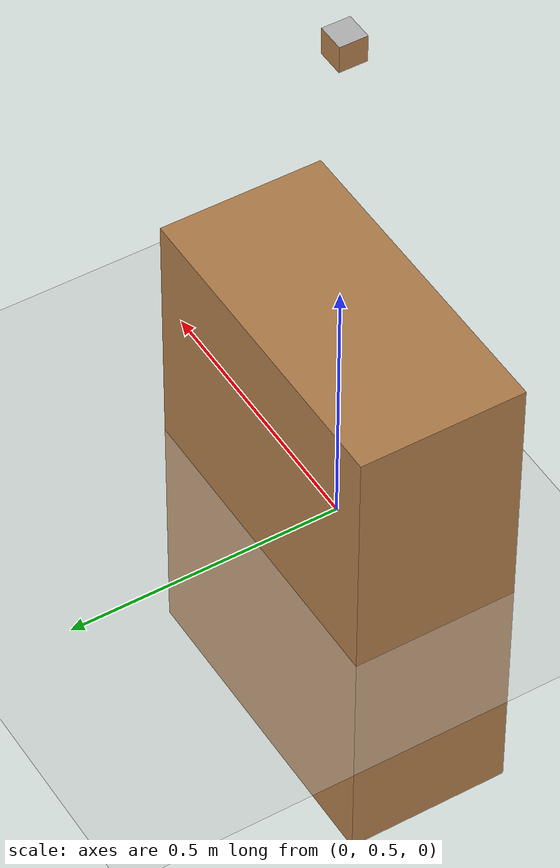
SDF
<?xml version="1.0" ?>

<sdf version="1.6">
  <world name="ur_visual">

    <!-- A global light source -->
    <include>
      <uri>model://sun</uri>
    </include>

    <!-- A ground plane -->
    <include>
      <uri>model://ground_plane</uri>
    </include>

    <!-- A desk -->
    <include>
      <uri>model://desk</uri>
      <pose>0 0.5 0 0 0 0</pose>
    </include>

    <!-- Aruco marker on a box -->
    <include>
      <uri>model://marker</uri>
      <pose>0 0.5 1 0 0 0</pose>
    </include>
  </world>
</sdf>

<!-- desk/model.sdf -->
<sdf version='1.6'>
  <model name='desk'>
    <link name="link">
      <inertial>
        <mass>1.0</mass>
        <inertia>
          <ixx>0.08</ixx>       <!-- for a box: ixx = 0.083 * mass * (y*y + z*z) -->
          <ixy>0.0</ixy>         <!-- for a box: ixy = 0 -->
          <ixz>0.0</ixz>         <!-- for a box: ixz = 0 -->
          <iyy>0.103</iyy>       <!-- for a box: iyy = 0.083 * mass * (x*x + z*z) -->
          <iyz>0.0</iyz>         <!-- for a box: iyz = 0 -->
          <izz>0.037</izz>       <!-- for a box: izz = 0.083 * mass * (x*x + y*y) -->
        </inertia>
      </inertial>
      <collision name="collision">
        <geometry>
          <box>
            <size>0.6 0.3 0.938</size>
          </box>
        </geometry>
      </collision>
      <visual name="visual">
        <geometry>
          <box>
            <size>0.6 0.3 0.938</size>
          </box>
        </geometry>
	  <material>
	    <script>
	      <uri>file://media/materials/scripts/gazebo.material</uri>
	      <name>Gazebo/Wood</name>
	    </script>
	  </material>
       </visual>
    </link>
  </model>
</sdf>

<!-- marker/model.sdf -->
<sdf version="1.5">
  <model name="marker">
     <static>false</static>

     <link name="marker_link">
      <inertial>
        <mass>0.390</mass>
        <inertia>
          <ixx>0.00058</ixx>
          <ixy>0</ixy>
          <ixz>0</ixz>
          <iyy>0.00058</iyy>
          <iyz>0</iyz>
          <izz>0.00019</izz>
        </inertia>
      </inertial>
      <collision name="box">
       <pose>0 0 0.025 0 0 0</pose>
        <geometry>
          <box>
            <size>0.05 0.05 0.05</size>
          </box>
        </geometry>
	    <surface>
          <friction>
            <ode>
              <mu>0.6</mu>
              <mu2>0.6</mu2>
            </ode>
          </friction>
        </surface>
      </collision>
      <visual name="box">
	    <pose>0 0 0.025 0 0 0</pose>
        <geometry>
          <box>
            <size>0.05 0.05 0.05</size>
          </box>
        </geometry>
	    <material>
	      <script>
	        <uri>file://media/materials/scripts/gazebo.material</uri>
	        <name>Gazebo/WoodPallet</name>
	      </script>
	    </material>
      </visual>
      <collision name="surface">
        <pose>0 0 0.0500025 0 0 0</pose>
        <geometry>
          <box>
            <size>0.05 0.05 1e-5</size>
          </box>
        </geometry>
      </collision>
      <visual name="surface">
	    <pose>0 0 0.0500025 0 0 0</pose>
        <geometry>
          <box>
            <size>0.05 0.05 1e-5</size>
          </box>
        </geometry>
        <material>
          <script>
            <uri>model://marker/materials/scripts</uri>
            <uri>model://marker/materials/textures</uri>
            <name>marker/Diffuse</name>
          </script>
        </material>
      </visual>
    </link>
  </model>
</sdf>
